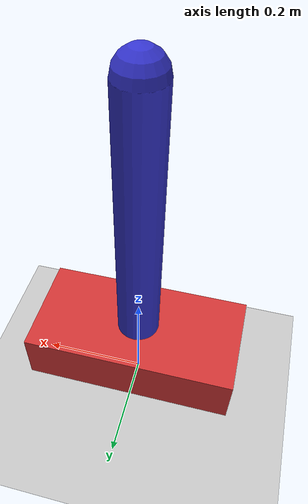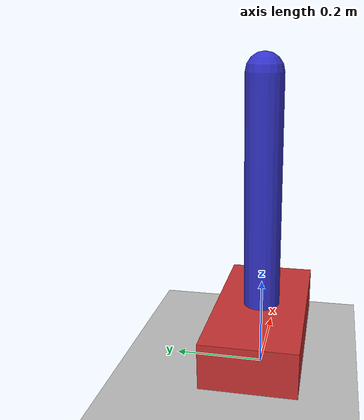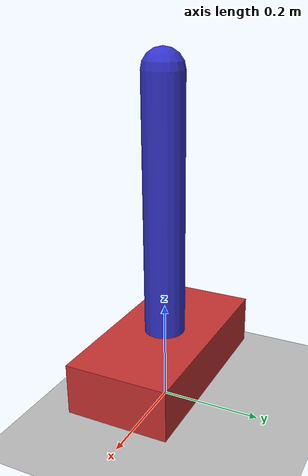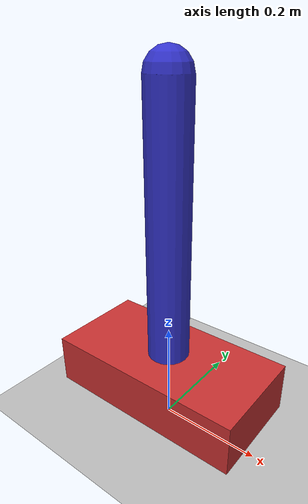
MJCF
<mujoco model="cartpole">
  <option gravity="0 0 -9.81" timestep="0.01" />

  <asset>
    <texture type="2d" name="ground" builtin="checker" rgb1="0.8 0.8 0.8" rgb2="0.7 0.7 0.7" width="300" height="300"/>
    <material name="ground_mat" texture="ground" texrepeat="10 10"/>
    <material name="cart_mat" rgba="0.8 0.2 0.2 1"/>
    <material name="pole_mat" rgba="0.2 0.2 0.8 1"/>
  </asset>

  <visual>
    <global offwidth="800"/>
  </visual>
  <visual>
    <global offheight="600"/>
  </visual>

  <worldbody>
    <light name="top" pos="0 0 5" diffuse="1 1 1" specular=".8 .8 .8"/>
    <geom name="ground" type="plane" size="10 10 0.1" material="ground_mat" contype="1" conaffinity="1"/>
    <camera name="wide_view" pos="0 5 3" xyaxes="-1 0 0 0 -5 10" fovy="80"/>

    <body name="cart" pos="0 0 0.1">
      <joint name="cart_slider" type="slide" axis="1 0 0" limited="false" damping="0.1"/>

      <geom name="cart_geom" type="box" size="0.2 0.1 0.05" material="cart_mat"/>

      <inertial pos="0 0 0" mass="1.0" diaginertia="0.01 0.01 0.01" />

      <body name="pole" pos="0 0 0.05">
        <joint name="pole_hinge" type="hinge" axis="0 1 0" damping="0.01" />

        <geom name="pole_geom" type="capsule" fromto="0 0 0 0 0 0.5" size="0.04" material="pole_mat"/>

        <inertial pos="0 0 0.25" mass="0.1" diaginertia="0.001 0.001 0.001" />
      </body>
    </body>
  </worldbody>

  <actuator>
    <motor name="cart_motor" joint="cart_slider" gear="100" ctrlrange="-1.0 1.0" />
  </actuator>

  <sensor>
    <jointpos name="cart_pos" joint="cart_slider" />
    <jointpos name="pole_angle" joint="pole_hinge" />
    <jointvel name="cart_vel" joint="cart_slider" />
    <jointvel name="pole_vel" joint="pole_hinge" />
  </sensor>

  <keyframe>
    <key name="init" qpos="0 0.02" />
  </keyframe>
</mujoco>
